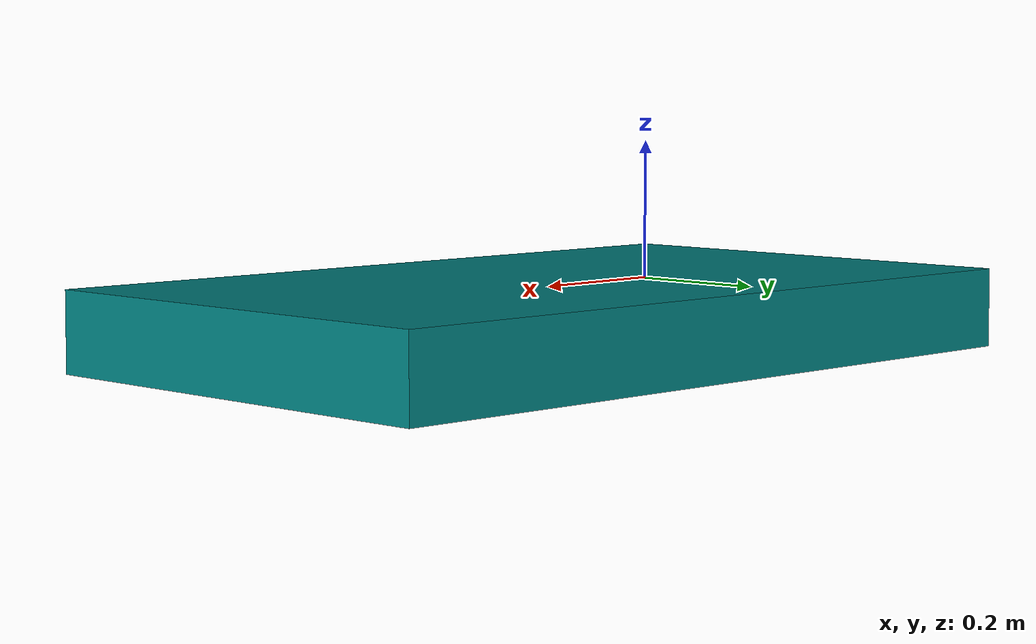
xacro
<robot name="payloads" xmlns:xacro="http://ros.org/wiki/xacro">
<xacro:arg name="payload_extensions" default="false" />
<link name="payload1">
  <visual name="visual">
    <origin xyz="0 0 -0.05"/>
    <geometry><mesh filename="package://industrial_payload_manager/test/meshes/payload1.stl"/></geometry>
    <material name="payload">
      <color rgba="0 0.5 0.5 1"/>
    </material>
  </visual>
  <collision name="collision">
    <origin xyz="0 0 -0.05"/>
    <geometry><mesh filename="package://industrial_payload_manager/test/meshes/payload1.stl"/></geometry>
  </collision>
  <inertial>
    <origin xyz="0.2 0.22 0.34" rpy="0.05 0.07 0.09"/>
    <mass value="7.232"/>
    <inertia ixx="0.4" ixy="0.01" ixz="0.012" iyy="0.41" iyz="0.013" izz="0.31"/>
  </inertial>
</link>

<link name="payload1_gripper_target"/>

<joint name="payload1_gripper_target_j" type="fixed">
  <parent link="payload1"/>
  <child link="payload1_gripper_target"/>
  <origin xyz="0.5 0.3 0.05" rpy="${radians(180)} ${radians(-3)} 0"/>
</joint>
</robot>
